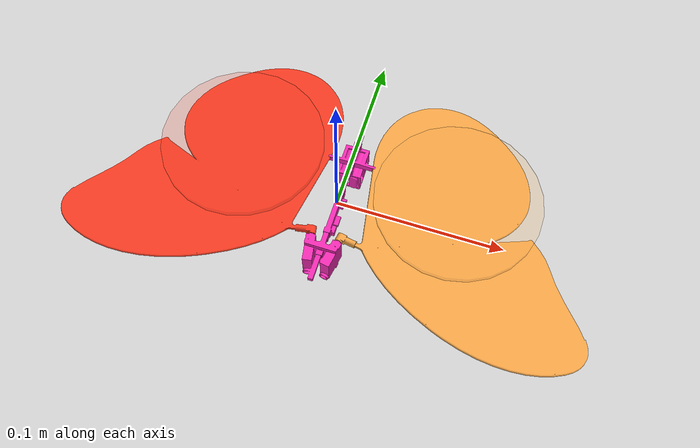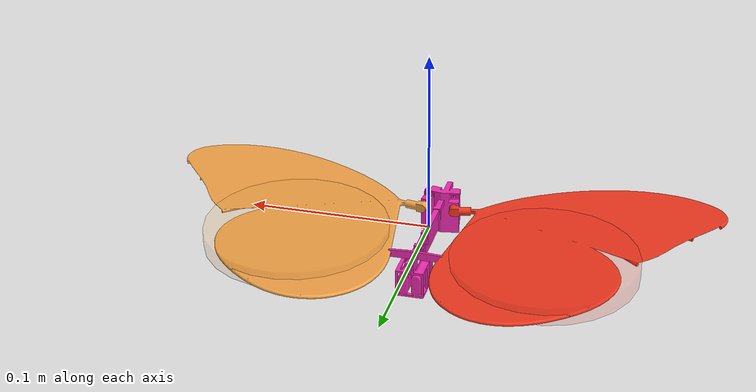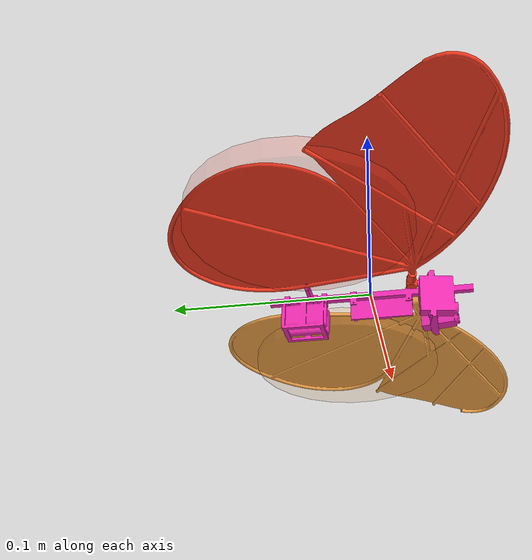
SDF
<?xml version="1.0" encoding="utf-8"?>
<sdf version='1.11'>
  <model name='butterfly' canonical_link = 'base_footprint'>

    <frame name="lidar_frame" attached_to='base_footprint'>
          <pose>0 0 0 0 0 -1.57</pose>
    </frame>

    <frame name="camera_frame" attached_to='base_footprint'>
          <pose>0 0 -1 0 0 -1.57</pose>
    </frame>

    <link name='base_footprint'>
      <inertial>
          <mass>0.513</mass>
          <pose>0 0 0.05 0 0 0</pose>
        <inertia>
            <ixx>1.0</ixx>
            <iyy>1.0</iyy>
            <izz>1.0</izz>
            <ixy>0.0</ixy>
            <ixz>0.0</ixz>
            <iyz>0.0</iyz>
        </inertia>
      </inertial>
      <collision name='base_footprint_fixed_joint_lump__base_link_collision'>
        <pose>0 0 0.001 0 0 0</pose>
        <geometry>
          <mesh>
            <scale>1 1 1</scale>
            <uri>model://meshes/visual/base_link.STL</uri>
          </mesh>
        </geometry>
      </collision>
      <visual name='base_footprint_visual'>
        <pose>0 0 0 0 0 0</pose>
        <geometry>
          <box>
            <size>0.001 0.001 0.001</size>
          </box>
        </geometry>
      </visual>
      <visual name='base_footprint_fixed_joint_lump__base_link_visual_1'>
        <pose>0 0 0.001 0 0 0</pose>
        <geometry>
          <mesh>
            <scale>1 1 1</scale>
            <uri>model://meshes/visual/base_link.STL</uri>
          </mesh>
        </geometry>
        <material>
          <diffuse>0.941176474 0.166652918 0.69416666 1</diffuse>
          <ambient>0.941176474 0.166652918 0.69416666 1</ambient>
        </material>
      </visual>

      <sensor name='gpu_lidar' type='gpu_lidar'>
          <pose relative_to='lidar_frame'>0 0 0 0 0 0</pose>
          <topic>lidar_scan</topic>
          <update_rate>10</update_rate>
          <ray>
              <scan>
                  <horizontal>
                      <samples>640</samples>
                      <resolution>1</resolution>
                      <min_angle>-1.396263</min_angle>
                      <max_angle>1.396263</max_angle>
                  </horizontal>
                  <vertical>
                      <samples>1</samples>
                      <resolution>0.01</resolution>
                      <min_angle>0</min_angle>
                      <max_angle>0</max_angle>
                  </vertical>
              </scan>
              <range>
                  <min>0.08</min>
                  <max>10.0</max>
                  <resolution>0.01</resolution>
              </range>
          </ray>
          <always_on>1</always_on>
          <visualize>true</visualize>
      </sensor>
      <sensor name="boundingbox_camera" type="boundingbox_camera">
         <pose relative_to='camera_frame'>0 0 0 0 0 0</pose>
         <topic>boxes</topic>
         <camera>
           <box_type>2d</box_type>
           <horizontal_fov>1.047</horizontal_fov>
           <image>
             <width>800</width>
             <height>600</height>
           </image>
           <clip>
             <near>0.1</near>
             <far>10</far>
           </clip>
         </camera>
         <always_on>1</always_on>
         <update_rate>10</update_rate>
         <visualize>true</visualize>
       </sensor>
       <sensor name="imu_sensor" type="imu">
          <pose>0 0 0 0 0 0</pose>
          <update_rate>100</update_rate>
          <imu>
            <linear_acceleration>
              <x>
                <noise type="gaussian">
                  <mean>0.0</mean>
                  <stddev>0.01</stddev>
                </noise>
              </x>
              <y>
                <noise type="gaussian">
                  <mean>0.0</mean>
                  <stddev>0.01</stddev>
                </noise>
              </y>
              <z>
                <noise type="gaussian">
                  <mean>0.0</mean>
                  <stddev>0.01</stddev>
                </noise>
              </z>
            </linear_acceleration>
            <angular_velocity>
              <x>
                <noise type="gaussian">
                  <mean>0.0</mean>
                  <stddev>0.01</stddev>
                </noise>
              </x>
              <y>
                <noise type="gaussian">
                  <mean>0.0</mean>
                  <stddev>0.01</stddev>
                </noise>
              </y>
              <z>
                <noise type="gaussian">
                  <mean>0.0</mean>
                  <stddev>0.01</stddev>
                </noise>
              </z>
            </angular_velocity>
          </imu>
        </sensor>

    </link>

    <joint name='Left_joint' type='revolute'>
        <pose relative_to='base_footprint'>0.0096273999999999995 -0.018692 -0.00040000000000000002 0 0 -0.17452999999999999</pose>
        <parent>base_footprint</parent>
        <child>Left_Link</child>
        <axis>
          <xyz>0 1 0</xyz>
          <limit>
            <lower>-0.34906999999999999</lower>
            <upper>0.34906999999999999</upper>
          </limit>
          <dynamics>
            <spring_reference>0</spring_reference>
            <spring_stiffness>0</spring_stiffness>
          </dynamics>
        </axis>
    </joint>
    <link name='Left_Link'>
        <pose relative_to='Left_joint'>0 0 0 0 0 0</pose>
        <inertial>
          <mass>0.035</mass>
          <pose>0 0 0.05 0 0 0</pose>
          <inertia>
            <ixx>0.1</ixx>
            <iyy>0.1</iyy>
            <izz>0.1</izz>
            <ixy>0.0</ixy>
            <ixz>0.0</ixz>
            <iyz>0.0</iyz>
          </inertia>
        </inertial>
        <collision name='Left_Link_collision'>
          <pose>0 0 0 0 0 0</pose>
          <geometry>
            <mesh>
              <scale>1 1 1</scale>
              <uri>model://meshes/visual/Left_Link.STL</uri>
            </mesh>
          </geometry>
        </collision>
        <visual name='Left_Link_visual'>
          <pose>0 0 0 0 0 0</pose>
          <geometry>
            <mesh>
              <scale>1 1 1</scale>
              <uri>model://meshes/visual/Left_Link.STL</uri>
            </mesh>
          </geometry>
          <material>
            <diffuse>0.949999988 0.637499988 0.275000006 1</diffuse>
            <ambient>0.949999988 0.637499988 0.275000006 1</ambient>
          </material>
        </visual>
    </link>
    <joint name='Right_joint' type='revolute'>
        <pose relative_to='base_footprint'>-0.0096273999999999995 -0.018692 -0.00040000000000000002 0 0 0.17452999999999999</pose>
        <parent>base_footprint</parent>
        <child>Right_Link</child>
        <axis>
          <xyz>0 1 0</xyz>
          <limit>
            <lower>-0.34906999999999999</lower>
            <upper>0.34906999999999999</upper>
          </limit>
          <dynamics>
            <spring_reference>0</spring_reference>
            <spring_stiffness>0</spring_stiffness>
          </dynamics>
        </axis>
    </joint>
    <link name='Right_Link'>
        <pose relative_to='Right_joint'>0 0 0 0 0 0</pose>
        <inertial>
          <mass>0.035</mass>
          <pose>0 0 0.05 0 0 0</pose> <!-- 偏移惯性中心 -->
          <inertia>
            <ixx>0.1</ixx>
            <iyy>0.1</iyy>
            <izz>0.1</izz>
            <ixy>0.0</ixy>
            <ixz>0.0</ixz>
            <iyz>0.0</iyz>
          </inertia>
        </inertial>
        <collision name='Right_Link_collision'>
          <pose>0 0 0 0 0 0</pose>
          <geometry>
            <mesh>
              <scale>1 1 1</scale>
              <uri>model://meshes/visual/Right_Link.STL</uri>
            </mesh>
          </geometry>
        </collision>
        <visual name='Right_Link_visual'>
          <pose>0 0 0 0 0 0</pose>
          <geometry>
            <mesh>
              <scale>1 1 1</scale>
              <uri>model://meshes/visual/Right_Link.STL</uri>
            </mesh>
          </geometry>
          <material>
            <diffuse>0.941174984 0.222214997 0.125 1</diffuse>
            <ambient>0.941174984 0.222214997 0.125 1</ambient>
          </material>
        </visual>
    </link>

    <!-- propellor modules: Links and Joints -->
    <link name='pp_Left'>
      <pose relative_to='Left_Link'>0.05 0.05 0 0 0 0</pose>
      <inertial>
        <pose>0 0 0 0 0 0</pose>
        <mass>0.001</mass>
        <inertia>
          <ixx>0.0001</ixx>
          <ixy>0</ixy>
          <ixz>0</ixz>
          <iyy>0.0001</iyy>
          <iyz>0</iyz>
          <izz>0.0001</izz>
        </inertia>
      </inertial>
      <collision name='pp_Left_collision'>
        <pose>0.0 0 0 0 0 0</pose>
        <geometry>
          <cylinder>
            <radius>0.05</radius>
            <length>0.01</length>
          </cylinder>
        </geometry>
      </collision>
      <visual name='pp_Left_visual'>
        <pose>0.0 0 0 0 0 0</pose>
        <geometry>
          <cylinder>
            <radius>0.05</radius>
            <length>0.01</length>
          </cylinder>
        </geometry>
        <material>
          <diffuse>0.949999988 0.637499988 0.275000006 0.1</diffuse>
          <ambient>0.949999988 0.637499988 0.275000006 0.1</ambient>
        </material>
      </visual>
    </link>
    <joint name='pp_Left_joint' type='revolute'>
      <pose relative_to='Left_Link'> 0.05 0.05 0 0 0 0</pose>
      <parent>base_footprint</parent>
      <child>pp_Left</child>
        <axis>
          <xyz>0 0 1</xyz>
          <dynamics>
            <damping>0.01</damping>
            <friction>0.01</friction>
          </dynamics>
        </axis>
    </joint>

    <link name='pp_Right'>
      <pose relative_to='Right_Link'>-0.05 0.05 0 0 0 0</pose>
      <inertial>
        <pose>0 0 0 0 0 0</pose>
        <mass>0.001</mass>
        <inertia>
          <ixx>0.0001</ixx>
          <ixy>0</ixy>
          <ixz>0</ixz>
          <iyy>0.0001</iyy>
          <iyz>0</iyz>
          <izz>0.0001</izz>
        </inertia>
      </inertial>
      <collision name='pp_Right_collision'>
        <pose>0.0 0 0 0 0 0</pose>
        <geometry>
          <cylinder>
            <radius>0.05</radius>
            <length>0.01</length>
          </cylinder>
        </geometry>
      </collision>
      <visual name='pp_Right_visual'>
        <pose>0.0 0 0 0 0 0</pose>
        <geometry>
          <cylinder>
            <radius>0.05</radius>
            <length>0.01</length>
          </cylinder>
        </geometry>
        <material>
          <diffuse>0.941174984 0.222214997 0.125 0.1</diffuse>
          <ambient>0.941174984 0.222214997 0.125 0.1</ambient>
        </material>
      </visual>
    </link>
    <joint name='pp_Right_joint' type='revolute'>
      <pose relative_to='Right_Link'> -0.05 0.05 0 0 0 0</pose>
      <parent>base_footprint</parent>
      <child>pp_Right</child>
        <axis>
          <xyz>0 0 1</xyz>
          <dynamics>
            <damping>0.01</damping>
            <friction>0.01</friction>
          </dynamics>
        </axis>
    </joint>

    <plugin
      filename="gz-sim-thruster-system"
      name="gz::sim::systems::Thruster">
      <use_angvel_cmd>0</use_angvel_cmd>
      <joint_name>pp_Left_joint</joint_name>
      <thrust_coefficient>0.004422</thrust_coefficient>
      <fluid_density>100</fluid_density>
      <propeller_diameter>0.2</propeller_diameter>
    </plugin>

    <plugin
      filename="gz-sim-thruster-system"
      name="gz::sim::systems::Thruster">
      <use_angvel_cmd>0</use_angvel_cmd>
      <joint_name>pp_Right_joint</joint_name>
      <thrust_coefficient>0.004422</thrust_coefficient>
      <fluid_density>100</fluid_density>
      <propeller_diameter>0.2</propeller_diameter>
    </plugin>

    <plugin
      filename="gz-sim-joint-state-publisher-system"
      name="gz::sim::systems::JointStatePublisher">
      <joint_name>Left_joint</joint_name>
    </plugin>

    <plugin
      filename="gz-sim-joint-state-publisher-system"
      name="gz::sim::systems::JointStatePublisher">
      <joint_name>Right_joint</joint_name>
    </plugin>

    <plugin
      filename="gz-sim-joint-position-controller-system"
      name="gz::sim::systems::JointPositionController">
      <joint_name>pp_Left_joint</joint_name>
      <topic>Left_joint_topic</topic>
      <p_gain>1</p_gain>
      <i_gain>0.1</i_gain>
      <d_gain>0.01</d_gain>
      <i_max>1</i_max>
      <i_min>-1</i_min>
      <cmd_max>1000</cmd_max>
      <cmd_min>-1000</cmd_min>
      <force>0.0</force>
    </plugin>

    <plugin
      filename="gz-sim-joint-position-controller-system"
      name="gz::sim::systems::JointPositionController">
      <joint_name>pp_Right_joint</joint_name>
      <topic>Right_joint_topic</topic>
      <p_gain>1</p_gain>
      <i_gain>0.1</i_gain>
      <d_gain>0.01</d_gain>
      <i_max>1</i_max>
      <i_min>-1</i_min>
      <cmd_max>1000</cmd_max>
      <cmd_min>-1000</cmd_min>
      <force>0.0</force>
    </plugin>

    <pose>0.00010600032654218532 -0.00010600016019757542 0.0 -1.2134942308985258e-07 -8.6638834068117707e-08 2.1183536231089912e-09</pose>
      <static>true</static>
      <self_collide>false</self_collide>
  </model>
</sdf>
